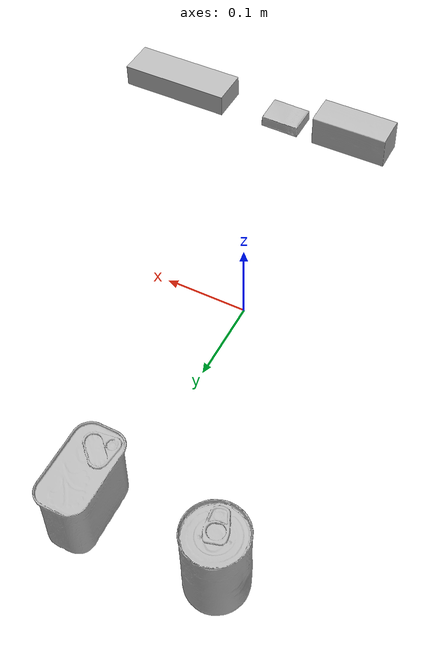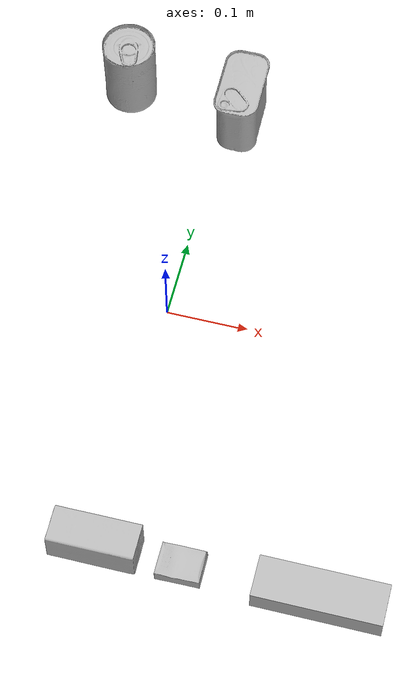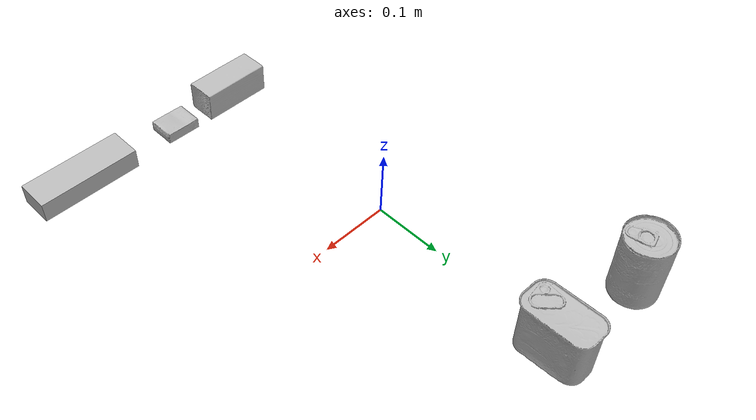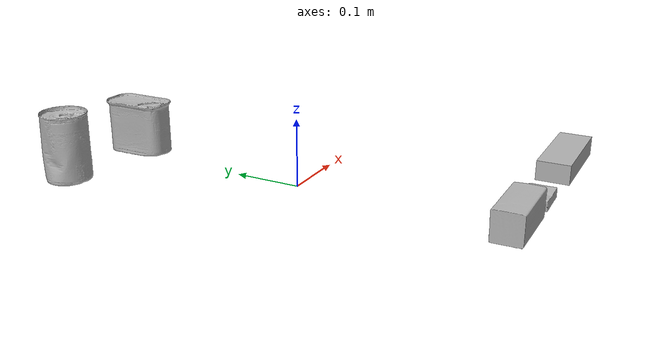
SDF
<?xml version="1.0" ?>
<sdf version="1.4">
  <world name="default">
    <light name="light1" type="point">
      <pose>0 0 1 0 0 0</pose>
      <diffuse>3 3 3 1</diffuse>
      <specular>3 3 3 1</specular>
    </light>
    <light name="light2" type="point">
      <pose>0 0.5 2 0 0 0</pose>
      <diffuse>1 1 1 1</diffuse>
      <specular>1 1 1 1</specular>
    </light>
    <light name="light3" type="point">
      <pose>0 0.5 2 0 0 0</pose>
      <diffuse>3 3 3 1</diffuse>
      <specular>3 3 3 1</specular>
    </light>
    <scene>
      <ambient>0.7 0.7 0.7</ambient>
    </scene>
    <model name="box1">
      <link name="link_box1">
        <collision name="default">
          <geometry>
            <mesh>
              <uri>model://jenga/collision_meshes/collision.obj</uri>
              <scale>1.0 1.0 1.0</scale>
            </mesh>
          </geometry>
          <surface>
            <friction>
              <ode>
                <mu>0.5</mu>
                <mu2>0.5</mu2>
              </ode>
            </friction>
          </surface>
        </collision>
        <visual name="default">
          <geometry>
            <mesh>
              <uri>model://jenga/visual_meshes/visual.dae</uri>
              <scale>1.0 1.0 1.0</scale>
            </mesh>
          </geometry>
        </visual>
        <inertial>
          <mass>0.13349448144435883</mass>
          <pose>-2.502855807051674e-07 -0.00010250010382151231 -4.0923401684267446e-05 0.0 -7.342153480750062e-07 0.0</pose>
          <inertia>
            <ixx>3.694116e-05</ixx>
            <iyy>0.0002503123</iyy>
            <izz>0.00026722968</izz>
            <ixy>0</ixy>
            <ixz>0</ixz>
            <iyz>0</iyz>
          </inertia>
        </inertial>
      </link>
      <pose>0.2600004971027374 -0.31989747285842896 0.014999995008111 -3.2166960318145917e-09 1.1482339355862126e-10 -1.9432374642765753e-07</pose>
    </model>
    <model name="box2">
      <link name="link_box2">
        <collision name="default">
          <geometry>
            <mesh>
              <uri>model://cracker_box/collision_meshes/collision.obj</uri>
              <scale>0.25 0.25 0.25</scale>
            </mesh>
          </geometry>
          <surface>
            <friction>
              <ode>
                <mu>0.5</mu>
                <mu2>0.5</mu2>
              </ode>
            </friction>
          </surface>
        </collision>
        <visual name="default">
          <geometry>
            <mesh>
              <uri>model://cracker_box/visual_meshes/visual.dae</uri>
              <scale>0.25 0.25 0.25</scale>
            </mesh>
          </geometry>
        </visual>
        <inertial>
          <mass>0.02145323157310486</mass>
          <pose>0.00023660292208660394 6.358561950037256e-05 -0.00042573839891701937 -0.00031620765701486096 -0.011106487737550933 0.0025467954675071156</pose>
          <inertia>
            <ixx>3.4104648e-06</ixx>
            <iyy>5.631348e-06</iyy>
            <izz>8.036451e-06</izz>
            <ixy>0</ixy>
            <ixz>0</ixz>
            <iyz>0</iyz>
          </inertia>
        </inertial>
      </link>
      <pose>0.09993372112512589 -0.3198489248752594 0.009120452217757702 -0.011788124164684832 -0.007367085043920063 5.318685219997872e-05</pose>
    </model>
    <model name="box3">
      <link name="link_box3">
        <collision name="default">
          <geometry>
            <mesh>
              <uri>model://wood_block/collision_meshes/collision.obj</uri>
              <scale>0.5 0.5 0.5</scale>
            </mesh>
          </geometry>
          <surface>
            <friction>
              <ode>
                <mu>0.5</mu>
                <mu2>0.5</mu2>
              </ode>
            </friction>
          </surface>
        </collision>
        <visual name="default">
          <geometry>
            <mesh>
              <uri>model://wood_block/visual_meshes/visual.dae</uri>
              <scale>0.5 0.5 0.5</scale>
            </mesh>
          </geometry>
        </visual>
        <inertial>
          <mass>0.16313479840755463</mass>
          <pose>-2.9066577553749084e-06 -0.000285404734313488 0.00013204291462898254 -0.05221116552051519 -0.005192696094342747 -0.006861377806143115</pose>
          <inertia>
            <ixx>5.457476e-05</ixx>
            <iyy>0.00017240169</iyy>
            <izz>0.00017175681</izz>
            <ixy>0</ixy>
            <ixz>0</ixz>
            <iyz>0</iyz>
          </inertia>
        </inertial>
      </link>
      <pose>-5.8149085816694424e-05 -0.3194345533847809 0.022629259154200554 -0.005208527160726516 0.005718718591371716 0.005304877352839066</pose>
    </model>
    <model name="can1">
      <link name="link_can1">
        <collision name="default">
          <geometry>
            <mesh>
              <uri>model://potted_meat_can/collision_meshes/collision.obj</uri>
              <scale>1.0 1.0 1.0</scale>
            </mesh>
          </geometry>
          <surface>
            <friction>
              <ode>
                <mu>0.5</mu>
                <mu2>0.5</mu2>
              </ode>
            </friction>
          </surface>
        </collision>
        <visual name="default">
          <geometry>
            <mesh>
              <uri>model://potted_meat_can/visual_meshes/visual.dae</uri>
              <scale>1.0 1.0 1.0</scale>
            </mesh>
          </geometry>
        </visual>
        <inertial>
          <mass>0.5782443881034851</mass>
          <pose>0.00022888134117238224 -5.989118290017359e-05 -0.0006367441383190453 -0.028093373189925445 -0.007232601430987569 0.015406267190211613</pose>
          <inertia>
            <ixx>0.0007438508</ixx>
            <iyy>0.00045194585</iyy>
            <izz>0.0005410098</izz>
            <ixy>0</ixy>
            <ixz>0</ixz>
            <iyz>0</iyz>
          </inertia>
        </inertial>
      </link>
      <pose>0.01989845186471939 0.3000054359436035 0.04212800785899162 -4.54165168117197e-08 -3.7848071868040785e-07 -2.748855599485616e-08</pose>
    </model>
    <model name="can2">
      <link name="link_can2">
        <collision name="default">
          <geometry>
            <mesh>
              <uri>model://tomato_soup_can/collision_meshes/collision.obj</uri>
              <scale>1.0 1.0 1.0</scale>
            </mesh>
          </geometry>
          <surface>
            <friction>
              <ode>
                <mu>0.5</mu>
                <mu2>0.5</mu2>
              </ode>
            </friction>
          </surface>
        </collision>
        <visual name="default">
          <geometry>
            <mesh>
              <uri>model://tomato_soup_can/visual_meshes/visual.dae</uri>
              <scale>1.0 1.0 1.0</scale>
            </mesh>
          </geometry>
        </visual>
        <inertial>
          <mass>0.191082164645195</mass>
          <pose>0.00012652273289859295 0.00010805522470036522 -0.0017973986687138677 0.007020071598615513 0.0004229929517945175 -0.009903241323856832</pose>
          <inertia>
            <ixx>0.0002095054</ixx>
            <iyy>0.00020829454</iyy>
            <izz>0.0001085847</izz>
            <ixy>0</ixy>
            <ixz>0</ixz>
            <iyz>0</iyz>
          </inertia>
        </inertial>
      </link>
      <pose>-0.1300540566444397 0.31000205874443054 0.05127400904893875 -5.425867939245927e-07 -6.601366517926728e-07 -3.272578781425483e-07</pose>
    </model>
  </world>
</sdf>
